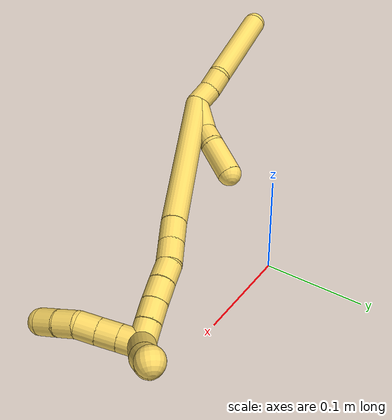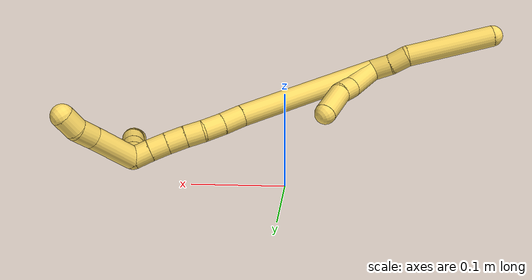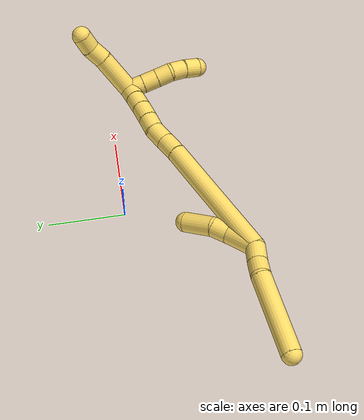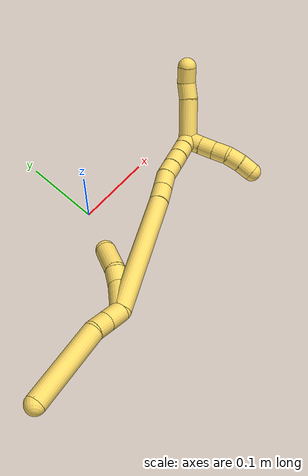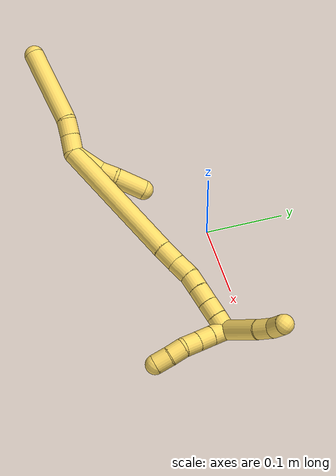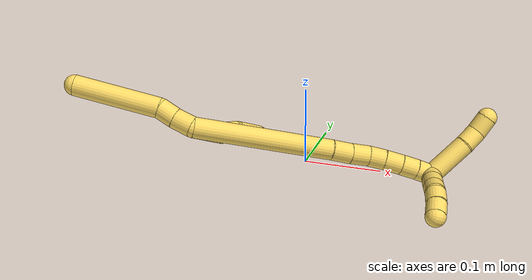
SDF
<sdf version="1.7">
 <world name="default">
  <model name="5">
   <static>0</static>
   <link name="5">
    <collision name="collision-cylinder-e_1_2_8">
     <pose>-0.004218 0.007131 0.008498 -0.698164 -0.363381 0.133542</pose>
     <geometry><cylinder><radius>0.0125</radius><length>0.023737</length></cylinder></geometry>
     <surface>
      <friction><ode><mu>1.16</mu><mu2>1.16</mu2><slip1>0</slip1><slip2>0</slip2></ode></friction>
      <contact><ode><kp>1e+06</kp><kd>1</kd><max_vel>0</max_vel><min_depth>0.001</min_depth></ode></contact>
     </surface>
    </collision>
    <visual name="visual-cylinder-e_1_2_8">
     <pose>-0.004218 0.007131 0.008498 -0.698164 -0.363381 0.133542</pose>
     <geometry><cylinder><radius>0.0125</radius><length>0.023737</length></cylinder></geometry>
     <material><ambient>1 0.858824 0.4 1</ambient></material>
    </visual>
    <collision name="collision-cylinder-e_2_8_9">
     <pose>-0.010542 0.02095 0.025362 -0.674327 -0.19405 0.068212</pose>
     <geometry><cylinder><radius>0.0125</radius><length>0.021832</length></cylinder></geometry>
     <surface>
      <friction><ode><mu>1.16</mu><mu2>1.16</mu2><slip1>0</slip1><slip2>0</slip2></ode></friction>
      <contact><ode><kp>1e+06</kp><kd>1</kd><max_vel>0</max_vel><min_depth>0.001</min_depth></ode></contact>
     </surface>
    </collision>
    <visual name="visual-cylinder-e_2_8_9">
     <pose>-0.010542 0.02095 0.025362 -0.674327 -0.19405 0.068212</pose>
     <geometry><cylinder><radius>0.0125</radius><length>0.021832</length></cylinder></geometry>
     <material><ambient>1 0.858824 0.4 1</ambient></material>
    </visual>
    <collision name="collision-cylinder-e_3_9_6">
     <pose>-0.03409 0.047921 0.076802 -0.440112 -0.423186 0.096022</pose>
     <geometry><cylinder><radius>0.0125</radius><length>0.104431</length></cylinder></geometry>
     <surface>
      <friction><ode><mu>1.16</mu><mu2>1.16</mu2><slip1>0</slip1><slip2>0</slip2></ode></friction>
      <contact><ode><kp>1e+06</kp><kd>1</kd><max_vel>0</max_vel><min_depth>0.001</min_depth></ode></contact>
     </surface>
    </collision>
    <visual name="visual-cylinder-e_3_9_6">
     <pose>-0.03409 0.047921 0.076802 -0.440112 -0.423186 0.096022</pose>
     <geometry><cylinder><radius>0.0125</radius><length>0.104431</length></cylinder></geometry>
     <material><ambient>1 0.858824 0.4 1</ambient></material>
    </visual>
    <collision name="collision-cylinder-e_1_2_10">
     <pose>-0.000803 0.001124 -0.019769 -3.08481 -0.040527 1.23958</pose>
     <geometry><cylinder><radius>0.0125</radius><length>0.039635</length></cylinder></geometry>
     <surface>
      <friction><ode><mu>1.16</mu><mu2>1.16</mu2><slip1>0</slip1><slip2>0</slip2></ode></friction>
      <contact><ode><kp>1e+06</kp><kd>1</kd><max_vel>0</max_vel><min_depth>0.001</min_depth></ode></contact>
     </surface>
    </collision>
    <visual name="visual-cylinder-e_1_2_10">
     <pose>-0.000803 0.001124 -0.019769 -3.08481 -0.040527 1.23958</pose>
     <geometry><cylinder><radius>0.0125</radius><length>0.039635</length></cylinder></geometry>
     <material><ambient>1 0.858824 0.4 1</ambient></material>
    </visual>
    <collision name="collision-cylinder-e_2_10_11">
     <pose>-0.000698 0.005387 -0.049939 -2.8484 0.083327 -0.550336</pose>
     <geometry><cylinder><radius>0.0125</radius><length>0.021804</length></cylinder></geometry>
     <surface>
      <friction><ode><mu>1.16</mu><mu2>1.16</mu2><slip1>0</slip1><slip2>0</slip2></ode></friction>
      <contact><ode><kp>1e+06</kp><kd>1</kd><max_vel>0</max_vel><min_depth>0.001</min_depth></ode></contact>
     </surface>
    </collision>
    <visual name="visual-cylinder-e_2_10_11">
     <pose>-0.000698 0.005387 -0.049939 -2.8484 0.083327 -0.550336</pose>
     <geometry><cylinder><radius>0.0125</radius><length>0.021804</length></cylinder></geometry>
     <material><ambient>1 0.858824 0.4 1</ambient></material>
    </visual>
    <collision name="collision-cylinder-e_3_11_5">
     <pose>-0.004239 0.012686 -0.078633 -2.91805 -0.232783 1.61162</pose>
     <geometry><cylinder><radius>0.0125</radius><length>0.038561</length></cylinder></geometry>
     <surface>
      <friction><ode><mu>1.16</mu><mu2>1.16</mu2><slip1>0</slip1><slip2>0</slip2></ode></friction>
      <contact><ode><kp>1e+06</kp><kd>1</kd><max_vel>0</max_vel><min_depth>0.001</min_depth></ode></contact>
     </surface>
    </collision>
    <visual name="visual-cylinder-e_3_11_5">
     <pose>-0.004239 0.012686 -0.078633 -2.91805 -0.232783 1.61162</pose>
     <geometry><cylinder><radius>0.0125</radius><length>0.038561</length></cylinder></geometry>
     <material><ambient>1 0.858824 0.4 1</ambient></material>
    </visual>
    <collision name="collision-cylinder-e_1_2_12">
     <pose>0.023779 -0.012793 -0.080498 2.98398 0.283857 2.13184</pose>
     <geometry><cylinder><radius>0.0125</radius><length>0.169812</length></cylinder></geometry>
     <surface>
      <friction><ode><mu>1.16</mu><mu2>1.16</mu2><slip1>0</slip1><slip2>0</slip2></ode></friction>
      <contact><ode><kp>1e+06</kp><kd>1</kd><max_vel>0</max_vel><min_depth>0.001</min_depth></ode></contact>
     </surface>
    </collision>
    <visual name="visual-cylinder-e_1_2_12">
     <pose>0.023779 -0.012793 -0.080498 2.98398 0.283857 2.13184</pose>
     <geometry><cylinder><radius>0.0125</radius><length>0.169812</length></cylinder></geometry>
     <material><ambient>1 0.858824 0.4 1</ambient></material>
    </visual>
    <collision name="collision-cylinder-e_2_12_13">
     <pose>0.050154 -0.027235 -0.172862 3.00354 0.213382 1.99509</pose>
     <geometry><cylinder><radius>0.0125</radius><length>0.024518</length></cylinder></geometry>
     <surface>
      <friction><ode><mu>1.16</mu><mu2>1.16</mu2><slip1>0</slip1><slip2>0</slip2></ode></friction>
      <contact><ode><kp>1e+06</kp><kd>1</kd><max_vel>0</max_vel><min_depth>0.001</min_depth></ode></contact>
     </surface>
    </collision>
    <visual name="visual-cylinder-e_2_12_13">
     <pose>0.050154 -0.027235 -0.172862 3.00354 0.213382 1.99509</pose>
     <geometry><cylinder><radius>0.0125</radius><length>0.024518</length></cylinder></geometry>
     <material><ambient>1 0.858824 0.4 1</ambient></material>
    </visual>
    <collision name="collision-cylinder-e_3_13_14">
     <pose>0.055755 -0.030007 -0.196118 3.04331 0.25685 2.41385</pose>
     <geometry><cylinder><radius>0.0125</radius><length>0.023663</length></cylinder></geometry>
     <surface>
      <friction><ode><mu>1.16</mu><mu2>1.16</mu2><slip1>0</slip1><slip2>0</slip2></ode></friction>
      <contact><ode><kp>1e+06</kp><kd>1</kd><max_vel>0</max_vel><min_depth>0.001</min_depth></ode></contact>
     </surface>
    </collision>
    <visual name="visual-cylinder-e_3_13_14">
     <pose>0.055755 -0.030007 -0.196118 3.04331 0.25685 2.41385</pose>
     <geometry><cylinder><radius>0.0125</radius><length>0.023663</length></cylinder></geometry>
     <material><ambient>1 0.858824 0.4 1</ambient></material>
    </visual>
    <collision name="collision-cylinder-e_4_14_15">
     <pose>0.062172 -0.034126 -0.216612 2.82373 0.341877 1.64488</pose>
     <geometry><cylinder><radius>0.0125</radius><length>0.02035</length></cylinder></geometry>
     <surface>
      <friction><ode><mu>1.16</mu><mu2>1.16</mu2><slip1>0</slip1><slip2>0</slip2></ode></friction>
      <contact><ode><kp>1e+06</kp><kd>1</kd><max_vel>0</max_vel><min_depth>0.001</min_depth></ode></contact>
     </surface>
    </collision>
    <visual name="visual-cylinder-e_4_14_15">
     <pose>0.062172 -0.034126 -0.216612 2.82373 0.341877 1.64488</pose>
     <geometry><cylinder><radius>0.0125</radius><length>0.02035</length></cylinder></geometry>
     <material><ambient>1 0.858824 0.4 1</ambient></material>
    </visual>
    <collision name="collision-cylinder-e_5_15_16">
     <pose>0.068673 -0.040466 -0.235476 2.81147 0.291027 1.44304</pose>
     <geometry><cylinder><radius>0.0125</radius><length>0.021536</length></cylinder></geometry>
     <surface>
      <friction><ode><mu>1.16</mu><mu2>1.16</mu2><slip1>0</slip1><slip2>0</slip2></ode></friction>
      <contact><ode><kp>1e+06</kp><kd>1</kd><max_vel>0</max_vel><min_depth>0.001</min_depth></ode></contact>
     </surface>
    </collision>
    <visual name="visual-cylinder-e_5_15_16">
     <pose>0.068673 -0.040466 -0.235476 2.81147 0.291027 1.44304</pose>
     <geometry><cylinder><radius>0.0125</radius><length>0.021536</length></cylinder></geometry>
     <material><ambient>1 0.858824 0.4 1</ambient></material>
    </visual>
    <collision name="collision-cylinder-e_6_16_17">
     <pose>0.074263 -0.046858 -0.254443 2.82194 0.252241 1.33298</pose>
     <geometry><cylinder><radius>0.0125</radius><length>0.020035</length></cylinder></geometry>
     <surface>
      <friction><ode><mu>1.16</mu><mu2>1.16</mu2><slip1>0</slip1><slip2>0</slip2></ode></friction>
      <contact><ode><kp>1e+06</kp><kd>1</kd><max_vel>0</max_vel><min_depth>0.001</min_depth></ode></contact>
     </surface>
    </collision>
    <visual name="visual-cylinder-e_6_16_17">
     <pose>0.074263 -0.046858 -0.254443 2.82194 0.252241 1.33298</pose>
     <geometry><cylinder><radius>0.0125</radius><length>0.020035</length></cylinder></geometry>
     <material><ambient>1 0.858824 0.4 1</ambient></material>
    </visual>
    <collision name="collision-cylinder-e_7_17_1">
     <pose>0.078825 -0.053174 -0.272922 2.80271 0.206794 1.09043</pose>
     <geometry><cylinder><radius>0.0125</radius><length>0.020087</length></cylinder></geometry>
     <surface>
      <friction><ode><mu>1.16</mu><mu2>1.16</mu2><slip1>0</slip1><slip2>0</slip2></ode></friction>
      <contact><ode><kp>1e+06</kp><kd>1</kd><max_vel>0</max_vel><min_depth>0.001</min_depth></ode></contact>
     </surface>
    </collision>
    <visual name="visual-cylinder-e_7_17_1">
     <pose>0.078825 -0.053174 -0.272922 2.80271 0.206794 1.09043</pose>
     <geometry><cylinder><radius>0.0125</radius><length>0.020087</length></cylinder></geometry>
     <material><ambient>1 0.858824 0.4 1</ambient></material>
    </visual>
    <collision name="collision-cylinder-e_1_1_18">
     <pose>0.08491 -0.064252 -0.277418 1.02211 0.413981 0.23443</pose>
     <geometry><cylinder><radius>0.0125</radius><length>0.02</length></cylinder></geometry>
     <surface>
      <friction><ode><mu>1.16</mu><mu2>1.16</mu2><slip1>0</slip1><slip2>0</slip2></ode></friction>
      <contact><ode><kp>1e+06</kp><kd>1</kd><max_vel>0</max_vel><min_depth>0.001</min_depth></ode></contact>
     </surface>
    </collision>
    <visual name="visual-cylinder-e_1_1_18">
     <pose>0.08491 -0.064252 -0.277418 1.02211 0.413981 0.23443</pose>
     <geometry><cylinder><radius>0.0125</radius><length>0.02</length></cylinder></geometry>
     <material><ambient>1 0.858824 0.4 1</ambient></material>
    </visual>
    <collision name="collision-cylinder-e_2_18_19">
     <pose>0.09308 -0.079871 -0.267968 1.03127 0.427646 0.244912</pose>
     <geometry><cylinder><radius>0.0125</radius><length>0.02</length></cylinder></geometry>
     <surface>
      <friction><ode><mu>1.16</mu><mu2>1.16</mu2><slip1>0</slip1><slip2>0</slip2></ode></friction>
      <contact><ode><kp>1e+06</kp><kd>1</kd><max_vel>0</max_vel><min_depth>0.001</min_depth></ode></contact>
     </surface>
    </collision>
    <visual name="visual-cylinder-e_2_18_19">
     <pose>0.09308 -0.079871 -0.267968 1.03127 0.427646 0.244912</pose>
     <geometry><cylinder><radius>0.0125</radius><length>0.02</length></cylinder></geometry>
     <material><ambient>1 0.858824 0.4 1</ambient></material>
    </visual>
    <collision name="collision-cylinder-e_3_19_20">
     <pose>0.101669 -0.095296 -0.258578 1.01655 0.46029 0.259584</pose>
     <geometry><cylinder><radius>0.0125</radius><length>0.02</length></cylinder></geometry>
     <surface>
      <friction><ode><mu>1.16</mu><mu2>1.16</mu2><slip1>0</slip1><slip2>0</slip2></ode></friction>
      <contact><ode><kp>1e+06</kp><kd>1</kd><max_vel>0</max_vel><min_depth>0.001</min_depth></ode></contact>
     </surface>
    </collision>
    <visual name="visual-cylinder-e_3_19_20">
     <pose>0.101669 -0.095296 -0.258578 1.01655 0.46029 0.259584</pose>
     <geometry><cylinder><radius>0.0125</radius><length>0.02</length></cylinder></geometry>
     <material><ambient>1 0.858824 0.4 1</ambient></material>
    </visual>
    <collision name="collision-cylinder-e_4_20_21">
     <pose>0.107855 -0.112109 -0.250341 1.2051 0.175284 0.120739</pose>
     <geometry><cylinder><radius>0.0125</radius><length>0.02</length></cylinder></geometry>
     <surface>
      <friction><ode><mu>1.16</mu><mu2>1.16</mu2><slip1>0</slip1><slip2>0</slip2></ode></friction>
      <contact><ode><kp>1e+06</kp><kd>1</kd><max_vel>0</max_vel><min_depth>0.001</min_depth></ode></contact>
     </surface>
    </collision>
    <visual name="visual-cylinder-e_4_20_21">
     <pose>0.107855 -0.112109 -0.250341 1.2051 0.175284 0.120739</pose>
     <geometry><cylinder><radius>0.0125</radius><length>0.02</length></cylinder></geometry>
     <material><ambient>1 0.858824 0.4 1</ambient></material>
    </visual>
    <collision name="collision-cylinder-e_5_21_4">
     <pose>0.110021 -0.130509 -0.242934 1.17132 0.042264 0.028035</pose>
     <geometry><cylinder><radius>0.0125</radius><length>0.02</length></cylinder></geometry>
     <surface>
      <friction><ode><mu>1.16</mu><mu2>1.16</mu2><slip1>0</slip1><slip2>0</slip2></ode></friction>
      <contact><ode><kp>1e+06</kp><kd>1</kd><max_vel>0</max_vel><min_depth>0.001</min_depth></ode></contact>
     </surface>
    </collision>
    <visual name="visual-cylinder-e_5_21_4">
     <pose>0.110021 -0.130509 -0.242934 1.17132 0.042264 0.028035</pose>
     <geometry><cylinder><radius>0.0125</radius><length>0.02</length></cylinder></geometry>
     <material><ambient>1 0.858824 0.4 1</ambient></material>
    </visual>
    <collision name="collision-cylinder-e_1_1_22">
     <pose>0.100381 -0.043301 -0.297026 -2.41664 0.777203 -1.64732</pose>
     <geometry><cylinder><radius>0.0125</radius><length>0.055595</length></cylinder></geometry>
     <surface>
      <friction><ode><mu>1.16</mu><mu2>1.16</mu2><slip1>0</slip1><slip2>0</slip2></ode></friction>
      <contact><ode><kp>1e+06</kp><kd>1</kd><max_vel>0</max_vel><min_depth>0.001</min_depth></ode></contact>
     </surface>
    </collision>
    <visual name="visual-cylinder-e_1_1_22">
     <pose>0.100381 -0.043301 -0.297026 -2.41664 0.777203 -1.64732</pose>
     <geometry><cylinder><radius>0.0125</radius><length>0.055595</length></cylinder></geometry>
     <material><ambient>1 0.858824 0.4 1</ambient></material>
    </visual>
    <collision name="collision-cylinder-e_2_22_23">
     <pose>0.126703 -0.023687 -0.318064 -2.33505 0.650748 -1.33811</pose>
     <geometry><cylinder><radius>0.0125</radius><length>0.022542</length></cylinder></geometry>
     <surface>
      <friction><ode><mu>1.16</mu><mu2>1.16</mu2><slip1>0</slip1><slip2>0</slip2></ode></friction>
      <contact><ode><kp>1e+06</kp><kd>1</kd><max_vel>0</max_vel><min_depth>0.001</min_depth></ode></contact>
     </surface>
    </collision>
    <visual name="visual-cylinder-e_2_22_23">
     <pose>0.126703 -0.023687 -0.318064 -2.33505 0.650748 -1.33811</pose>
     <geometry><cylinder><radius>0.0125</radius><length>0.022542</length></cylinder></geometry>
     <material><ambient>1 0.858824 0.4 1</ambient></material>
    </visual>
    <collision name="collision-cylinder-e_3_23_3">
     <pose>0.142202 -0.011367 -0.327451 -2.06908 0.916144 -1.38501</pose>
     <geometry><cylinder><radius>0.0125</radius><length>0.021863</length></cylinder></geometry>
     <surface>
      <friction><ode><mu>1.16</mu><mu2>1.16</mu2><slip1>0</slip1><slip2>0</slip2></ode></friction>
      <contact><ode><kp>1e+06</kp><kd>1</kd><max_vel>0</max_vel><min_depth>0.001</min_depth></ode></contact>
     </surface>
    </collision>
    <visual name="visual-cylinder-e_3_23_3">
     <pose>0.142202 -0.011367 -0.327451 -2.06908 0.916144 -1.38501</pose>
     <geometry><cylinder><radius>0.0125</radius><length>0.021863</length></cylinder></geometry>
     <material><ambient>1 0.858824 0.4 1</ambient></material>
    </visual>
    <collision name="collision-sphere-3">
     <pose>0.150874 -0.00552 -0.330632 0 -0 0</pose>
     <geometry><sphere><radius>0.0125</radius></sphere></geometry>
     <surface>
      <friction><ode><mu>1.16</mu><mu2>1.16</mu2><slip1>0</slip1><slip2>0</slip2></ode></friction>
      <contact><ode><kp>1e+06</kp><kd>1</kd><max_vel>0</max_vel><min_depth>0.001</min_depth></ode></contact>
     </surface>
    </collision>
    <visual name="visual-sphere-3">
     <pose>0.150874 -0.00552 -0.330632 0 -0 0</pose>
     <geometry><sphere><radius>0.0125</radius></sphere></geometry>
     <material><ambient>1 0.858824 0.4 1</ambient></material>
    </visual>
    <collision name="collision-sphere-23">
     <pose>0.133531 -0.017214 -0.32427 0 -0 0</pose>
     <geometry><sphere><radius>0.0125</radius></sphere></geometry>
     <surface>
      <friction><ode><mu>1.16</mu><mu2>1.16</mu2><slip1>0</slip1><slip2>0</slip2></ode></friction>
      <contact><ode><kp>1e+06</kp><kd>1</kd><max_vel>0</max_vel><min_depth>0.001</min_depth></ode></contact>
     </surface>
    </collision>
    <visual name="visual-sphere-23">
     <pose>0.133531 -0.017214 -0.32427 0 -0 0</pose>
     <geometry><sphere><radius>0.0125</radius></sphere></geometry>
     <material><ambient>1 0.858824 0.4 1</ambient></material>
    </visual>
    <collision name="collision-sphere-22">
     <pose>0.119875 -0.030161 -0.311859 0 -0 0</pose>
     <geometry><sphere><radius>0.0125</radius></sphere></geometry>
     <surface>
      <friction><ode><mu>1.16</mu><mu2>1.16</mu2><slip1>0</slip1><slip2>0</slip2></ode></friction>
      <contact><ode><kp>1e+06</kp><kd>1</kd><max_vel>0</max_vel><min_depth>0.001</min_depth></ode></contact>
     </surface>
    </collision>
    <visual name="visual-sphere-22">
     <pose>0.119875 -0.030161 -0.311859 0 -0 0</pose>
     <geometry><sphere><radius>0.0125</radius></sphere></geometry>
     <material><ambient>1 0.858824 0.4 1</ambient></material>
    </visual>
    <collision name="collision-sphere-4">
     <pose>0.110444 -0.139714 -0.239048 0 -0 0</pose>
     <geometry><sphere><radius>0.0125</radius></sphere></geometry>
     <surface>
      <friction><ode><mu>1.16</mu><mu2>1.16</mu2><slip1>0</slip1><slip2>0</slip2></ode></friction>
      <contact><ode><kp>1e+06</kp><kd>1</kd><max_vel>0</max_vel><min_depth>0.001</min_depth></ode></contact>
     </surface>
    </collision>
    <visual name="visual-sphere-4">
     <pose>0.110444 -0.139714 -0.239048 0 -0 0</pose>
     <geometry><sphere><radius>0.0125</radius></sphere></geometry>
     <material><ambient>1 0.858824 0.4 1</ambient></material>
    </visual>
    <collision name="collision-sphere-21">
     <pose>0.109599 -0.121305 -0.24682 0 -0 0</pose>
     <geometry><sphere><radius>0.0125</radius></sphere></geometry>
     <surface>
      <friction><ode><mu>1.16</mu><mu2>1.16</mu2><slip1>0</slip1><slip2>0</slip2></ode></friction>
      <contact><ode><kp>1e+06</kp><kd>1</kd><max_vel>0</max_vel><min_depth>0.001</min_depth></ode></contact>
     </surface>
    </collision>
    <visual name="visual-sphere-21">
     <pose>0.109599 -0.121305 -0.24682 0 -0 0</pose>
     <geometry><sphere><radius>0.0125</radius></sphere></geometry>
     <material><ambient>1 0.858824 0.4 1</ambient></material>
    </visual>
    <collision name="collision-sphere-20">
     <pose>0.106111 -0.102914 -0.253863 0 -0 0</pose>
     <geometry><sphere><radius>0.0125</radius></sphere></geometry>
     <surface>
      <friction><ode><mu>1.16</mu><mu2>1.16</mu2><slip1>0</slip1><slip2>0</slip2></ode></friction>
      <contact><ode><kp>1e+06</kp><kd>1</kd><max_vel>0</max_vel><min_depth>0.001</min_depth></ode></contact>
     </surface>
    </collision>
    <visual name="visual-sphere-20">
     <pose>0.106111 -0.102914 -0.253863 0 -0 0</pose>
     <geometry><sphere><radius>0.0125</radius></sphere></geometry>
     <material><ambient>1 0.858824 0.4 1</ambient></material>
    </visual>
    <collision name="collision-sphere-11">
     <pose>0.000209 0.008527 -0.06034 0 -0 0</pose>
     <geometry><sphere><radius>0.0125</radius></sphere></geometry>
     <surface>
      <friction><ode><mu>1.16</mu><mu2>1.16</mu2><slip1>0</slip1><slip2>0</slip2></ode></friction>
      <contact><ode><kp>1e+06</kp><kd>1</kd><max_vel>0</max_vel><min_depth>0.001</min_depth></ode></contact>
     </surface>
    </collision>
    <visual name="visual-sphere-11">
     <pose>0.000209 0.008527 -0.06034 0 -0 0</pose>
     <geometry><sphere><radius>0.0125</radius></sphere></geometry>
     <material><ambient>1 0.858824 0.4 1</ambient></material>
    </visual>
    <collision name="collision-sphere-10">
     <pose>-0.001606 0.002248 -0.039539 0 -0 0</pose>
     <geometry><sphere><radius>0.0125</radius></sphere></geometry>
     <surface>
      <friction><ode><mu>1.16</mu><mu2>1.16</mu2><slip1>0</slip1><slip2>0</slip2></ode></friction>
      <contact><ode><kp>1e+06</kp><kd>1</kd><max_vel>0</max_vel><min_depth>0.001</min_depth></ode></contact>
     </surface>
    </collision>
    <visual name="visual-sphere-10">
     <pose>-0.001606 0.002248 -0.039539 0 -0 0</pose>
     <geometry><sphere><radius>0.0125</radius></sphere></geometry>
     <material><ambient>1 0.858824 0.4 1</ambient></material>
    </visual>
    <collision name="collision-sphere-6">
     <pose>-0.055533 0.068204 0.119874 0 -0 0</pose>
     <geometry><sphere><radius>0.0125</radius></sphere></geometry>
     <surface>
      <friction><ode><mu>1.16</mu><mu2>1.16</mu2><slip1>0</slip1><slip2>0</slip2></ode></friction>
      <contact><ode><kp>1e+06</kp><kd>1</kd><max_vel>0</max_vel><min_depth>0.001</min_depth></ode></contact>
     </surface>
    </collision>
    <visual name="visual-sphere-6">
     <pose>-0.055533 0.068204 0.119874 0 -0 0</pose>
     <geometry><sphere><radius>0.0125</radius></sphere></geometry>
     <material><ambient>1 0.858824 0.4 1</ambient></material>
    </visual>
    <collision name="collision-sphere-9">
     <pose>-0.012647 0.027637 0.033729 0 -0 0</pose>
     <geometry><sphere><radius>0.0125</radius></sphere></geometry>
     <surface>
      <friction><ode><mu>1.16</mu><mu2>1.16</mu2><slip1>0</slip1><slip2>0</slip2></ode></friction>
      <contact><ode><kp>1e+06</kp><kd>1</kd><max_vel>0</max_vel><min_depth>0.001</min_depth></ode></contact>
     </surface>
    </collision>
    <visual name="visual-sphere-9">
     <pose>-0.012647 0.027637 0.033729 0 -0 0</pose>
     <geometry><sphere><radius>0.0125</radius></sphere></geometry>
     <material><ambient>1 0.858824 0.4 1</ambient></material>
    </visual>
    <collision name="collision-sphere-2">
     <geometry><sphere><radius>0.0125</radius></sphere></geometry>
     <surface>
      <friction><ode><mu>1.16</mu><mu2>1.16</mu2><slip1>0</slip1><slip2>0</slip2></ode></friction>
      <contact><ode><kp>1e+06</kp><kd>1</kd><max_vel>0</max_vel><min_depth>0.001</min_depth></ode></contact>
     </surface>
    </collision>
    <visual name="visual-sphere-2">
     <geometry><sphere><radius>0.0125</radius></sphere></geometry>
     <material><ambient>1 0.858824 0.4 1</ambient></material>
    </visual>
    <collision name="collision-sphere-19">
     <pose>0.097227 -0.087678 -0.263293 0 -0 0</pose>
     <geometry><sphere><radius>0.0125</radius></sphere></geometry>
     <surface>
      <friction><ode><mu>1.16</mu><mu2>1.16</mu2><slip1>0</slip1><slip2>0</slip2></ode></friction>
      <contact><ode><kp>1e+06</kp><kd>1</kd><max_vel>0</max_vel><min_depth>0.001</min_depth></ode></contact>
     </surface>
    </collision>
    <visual name="visual-sphere-19">
     <pose>0.097227 -0.087678 -0.263293 0 -0 0</pose>
     <geometry><sphere><radius>0.0125</radius></sphere></geometry>
     <material><ambient>1 0.858824 0.4 1</ambient></material>
    </visual>
    <collision name="collision-sphere-8">
     <pose>-0.008437 0.014262 0.016996 0 -0 0</pose>
     <geometry><sphere><radius>0.0125</radius></sphere></geometry>
     <surface>
      <friction><ode><mu>1.16</mu><mu2>1.16</mu2><slip1>0</slip1><slip2>0</slip2></ode></friction>
      <contact><ode><kp>1e+06</kp><kd>1</kd><max_vel>0</max_vel><min_depth>0.001</min_depth></ode></contact>
     </surface>
    </collision>
    <visual name="visual-sphere-8">
     <pose>-0.008437 0.014262 0.016996 0 -0 0</pose>
     <geometry><sphere><radius>0.0125</radius></sphere></geometry>
     <material><ambient>1 0.858824 0.4 1</ambient></material>
    </visual>
    <collision name="collision-sphere-5">
     <pose>-0.008687 0.016845 -0.096927 0 -0 0</pose>
     <geometry><sphere><radius>0.0125</radius></sphere></geometry>
     <surface>
      <friction><ode><mu>1.16</mu><mu2>1.16</mu2><slip1>0</slip1><slip2>0</slip2></ode></friction>
      <contact><ode><kp>1e+06</kp><kd>1</kd><max_vel>0</max_vel><min_depth>0.001</min_depth></ode></contact>
     </surface>
    </collision>
    <visual name="visual-sphere-5">
     <pose>-0.008687 0.016845 -0.096927 0 -0 0</pose>
     <geometry><sphere><radius>0.0125</radius></sphere></geometry>
     <material><ambient>1 0.858824 0.4 1</ambient></material>
    </visual>
    <collision name="collision-sphere-12">
     <pose>0.047558 -0.025587 -0.160996 0 -0 0</pose>
     <geometry><sphere><radius>0.0125</radius></sphere></geometry>
     <surface>
      <friction><ode><mu>1.16</mu><mu2>1.16</mu2><slip1>0</slip1><slip2>0</slip2></ode></friction>
      <contact><ode><kp>1e+06</kp><kd>1</kd><max_vel>0</max_vel><min_depth>0.001</min_depth></ode></contact>
     </surface>
    </collision>
    <visual name="visual-sphere-12">
     <pose>0.047558 -0.025587 -0.160996 0 -0 0</pose>
     <geometry><sphere><radius>0.0125</radius></sphere></geometry>
     <material><ambient>1 0.858824 0.4 1</ambient></material>
    </visual>
    <collision name="collision-sphere-13">
     <pose>0.05275 -0.028884 -0.184729 0 -0 0</pose>
     <geometry><sphere><radius>0.0125</radius></sphere></geometry>
     <surface>
      <friction><ode><mu>1.16</mu><mu2>1.16</mu2><slip1>0</slip1><slip2>0</slip2></ode></friction>
      <contact><ode><kp>1e+06</kp><kd>1</kd><max_vel>0</max_vel><min_depth>0.001</min_depth></ode></contact>
     </surface>
    </collision>
    <visual name="visual-sphere-13">
     <pose>0.05275 -0.028884 -0.184729 0 -0 0</pose>
     <geometry><sphere><radius>0.0125</radius></sphere></geometry>
     <material><ambient>1 0.858824 0.4 1</ambient></material>
    </visual>
    <collision name="collision-sphere-14">
     <pose>0.058761 -0.03113 -0.207506 0 -0 0</pose>
     <geometry><sphere><radius>0.0125</radius></sphere></geometry>
     <surface>
      <friction><ode><mu>1.16</mu><mu2>1.16</mu2><slip1>0</slip1><slip2>0</slip2></ode></friction>
      <contact><ode><kp>1e+06</kp><kd>1</kd><max_vel>0</max_vel><min_depth>0.001</min_depth></ode></contact>
     </surface>
    </collision>
    <visual name="visual-sphere-14">
     <pose>0.058761 -0.03113 -0.207506 0 -0 0</pose>
     <geometry><sphere><radius>0.0125</radius></sphere></geometry>
     <material><ambient>1 0.858824 0.4 1</ambient></material>
    </visual>
    <collision name="collision-sphere-15">
     <pose>0.065583 -0.037122 -0.225718 0 -0 0</pose>
     <geometry><sphere><radius>0.0125</radius></sphere></geometry>
     <surface>
      <friction><ode><mu>1.16</mu><mu2>1.16</mu2><slip1>0</slip1><slip2>0</slip2></ode></friction>
      <contact><ode><kp>1e+06</kp><kd>1</kd><max_vel>0</max_vel><min_depth>0.001</min_depth></ode></contact>
     </surface>
    </collision>
    <visual name="visual-sphere-15">
     <pose>0.065583 -0.037122 -0.225718 0 -0 0</pose>
     <geometry><sphere><radius>0.0125</radius></sphere></geometry>
     <material><ambient>1 0.858824 0.4 1</ambient></material>
    </visual>
    <collision name="collision-sphere-16">
     <pose>0.071763 -0.04381 -0.245234 0 -0 0</pose>
     <geometry><sphere><radius>0.0125</radius></sphere></geometry>
     <surface>
      <friction><ode><mu>1.16</mu><mu2>1.16</mu2><slip1>0</slip1><slip2>0</slip2></ode></friction>
      <contact><ode><kp>1e+06</kp><kd>1</kd><max_vel>0</max_vel><min_depth>0.001</min_depth></ode></contact>
     </surface>
    </collision>
    <visual name="visual-sphere-16">
     <pose>0.071763 -0.04381 -0.245234 0 -0 0</pose>
     <geometry><sphere><radius>0.0125</radius></sphere></geometry>
     <material><ambient>1 0.858824 0.4 1</ambient></material>
    </visual>
    <collision name="collision-sphere-17">
     <pose>0.076763 -0.049906 -0.263652 0 -0 0</pose>
     <geometry><sphere><radius>0.0125</radius></sphere></geometry>
     <surface>
      <friction><ode><mu>1.16</mu><mu2>1.16</mu2><slip1>0</slip1><slip2>0</slip2></ode></friction>
      <contact><ode><kp>1e+06</kp><kd>1</kd><max_vel>0</max_vel><min_depth>0.001</min_depth></ode></contact>
     </surface>
    </collision>
    <visual name="visual-sphere-17">
     <pose>0.076763 -0.049906 -0.263652 0 -0 0</pose>
     <geometry><sphere><radius>0.0125</radius></sphere></geometry>
     <material><ambient>1 0.858824 0.4 1</ambient></material>
    </visual>
    <collision name="collision-sphere-1">
     <pose>0.080887 -0.056441 -0.282193 0 -0 0</pose>
     <geometry><sphere><radius>0.0125</radius></sphere></geometry>
     <surface>
      <friction><ode><mu>1.16</mu><mu2>1.16</mu2><slip1>0</slip1><slip2>0</slip2></ode></friction>
      <contact><ode><kp>1e+06</kp><kd>1</kd><max_vel>0</max_vel><min_depth>0.001</min_depth></ode></contact>
     </surface>
    </collision>
    <visual name="visual-sphere-1">
     <pose>0.080887 -0.056441 -0.282193 0 -0 0</pose>
     <geometry><sphere><radius>0.0125</radius></sphere></geometry>
     <material><ambient>1 0.858824 0.4 1</ambient></material>
    </visual>
    <collision name="collision-sphere-18">
     <pose>0.088932 -0.072064 -0.272642 0 -0 0</pose>
     <geometry><sphere><radius>0.0125</radius></sphere></geometry>
     <surface>
      <friction><ode><mu>1.16</mu><mu2>1.16</mu2><slip1>0</slip1><slip2>0</slip2></ode></friction>
      <contact><ode><kp>1e+06</kp><kd>1</kd><max_vel>0</max_vel><min_depth>0.001</min_depth></ode></contact>
     </surface>
    </collision>
    <visual name="visual-sphere-18">
     <pose>0.088932 -0.072064 -0.272642 0 -0 0</pose>
     <geometry><sphere><radius>0.0125</radius></sphere></geometry>
     <material><ambient>1 0.858824 0.4 1</ambient></material>
    </visual>
    <inertial>
     <pose>0.039731 -0.018228 -0.127364 0 -0 0</pose>
     <mass>0.75</mass>
     <inertia>
      <ixx>0.000253</ixx>
      <ixy>0</ixy>
      <ixz>0</ixz>
      <iyy>0.000693</iyy>
      <iyz>0</iyz>
      <izz>-9.4e-05</izz>
     </inertia>
    </inertial>
   </link>
   <pose>-0.093479 -0.148079 0.096137 0.952304 -0.84934 -0.325568</pose>
  </model>
 </world>
</sdf>
